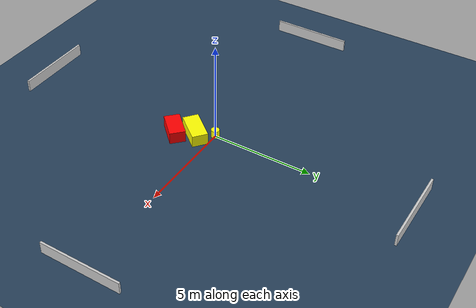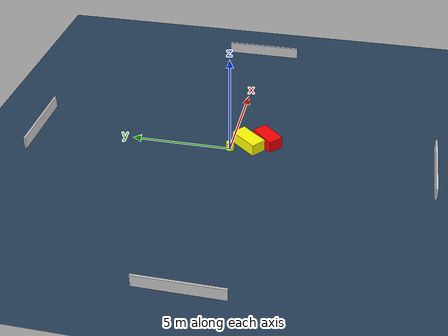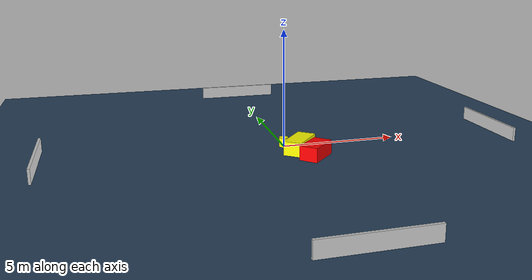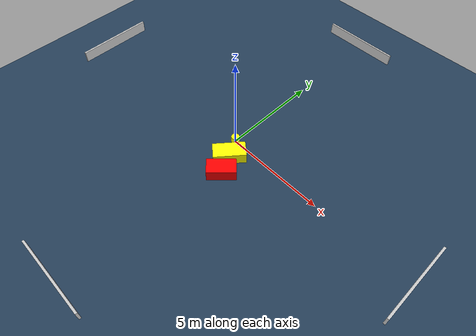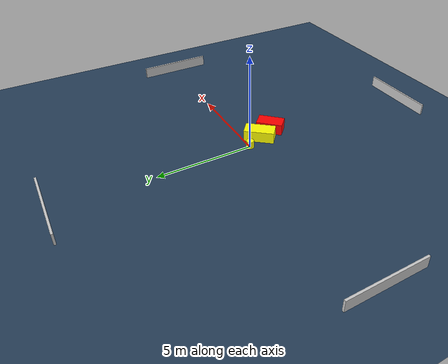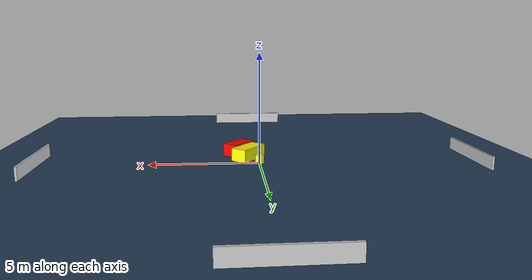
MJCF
<?xml version="1.0" ?>
<mujoco model="generated_environment">
  <option timestep="0.01" integrator="RK4" cone="elliptic"/>
  <default>
    <geom density="1"/>
  </default>
  <asset>
    <texture builtin="gradient" height="3072" name="skybox" rgb1="0.3 0.5 0.7" rgb2="0 0 0" type="skybox" width="512"/>
    <texture builtin="checker" height="300" name="groundplane" rgb1="0.2 0.3 0.4" rgb2="0.1 0.2 0.3" type="2d" width="300"/>
    <material name="groundplane" reflectance="0.2" texrepeat="5 5" texture="groundplane"/>
  </asset>
  <worldbody>
    <light dir="0 0 -1" directional="true" pos="0 0 1.5"/>
    <geom condim="3" friction="0.5 0.005 0.001" material="groundplane" name="floor" pos="0 0 0" size="0 0 0.05" type="plane"/>
    <body name="walls">
      <geom name="wall_1" condim="4" pos="-10.0 0.0 0.3" rgba="0.800000011920929 0.800000011920929 0.800000011920929 1.0" size="0.05 2.0 0.3" type="box"/>
      <geom name="wall_2" condim="4" pos="10.0 0.0 0.3" rgba="0.800000011920929 0.800000011920929 0.800000011920929 1.0" size="0.05 2.0 0.3" type="box"/>
      <geom name="wall_3" condim="4" pos="0.0 -10.0 0.3" rgba="0.800000011920929 0.800000011920929 0.800000011920929 1.0" size="2.0 0.05 0.3" type="box"/>
      <geom name="wall_4" condim="4" pos="0.0 10.0 0.3" rgba="0.800000011920929 0.800000011920929 0.800000011920929 1.0" size="2.0 0.05 0.3" type="box"/>
    </body>
    <body name="robot">
      <joint name="joint_x" type="slide" pos="0 0 0" axis="1 0 0"/>
      <joint name="joint_y" type="slide" pos="0 0 0" axis="0 1 0"/>
      <geom name="robot" type="cylinder" pos="0.0 0.0 0.2" size="0.2 0.2 0.0" mass="5.0" friction="1.0 0.005 0.0001" condim="4" rgba="1.0 1.0 0.0 1.0"/>
    </body>
    <body name="obstacle_1_movable">
      <geom name="obstacle_1_movable" condim="4" pos="0.4572925729049775 -0.8429920393774267 0.3" euler="0 0 140.67801954463505" friction="0.0 0.005 0.001" rgba="1.0 1.0 0.0 1.0" size="0.39171550003157607 0.7870739456276619 0.3" type="box" mass="0.1"/>
      <joint type="free"/>
    </body>
    <body name="obstacle_2_static">
      <geom name="obstacle_2_static" condim="4" pos="0.8684030644039841 -1.7417770002597457 0.3" euler="0 0 46.01565315612668" friction="0.0 0.005 0.001" rgba="1.0 0.0 0.0 1.0" size="0.6915937046215941 0.3886866313037351 0.3" type="box"/>
    </body>
  </worldbody>
  <actuator>
    <motor name="actuator_x" joint="joint_x" gear="1" ctrlrange="-1 1"/>
    <motor name="actuator_y" joint="joint_y" gear="1" ctrlrange="-1 1"/>
  </actuator>
</mujoco>
